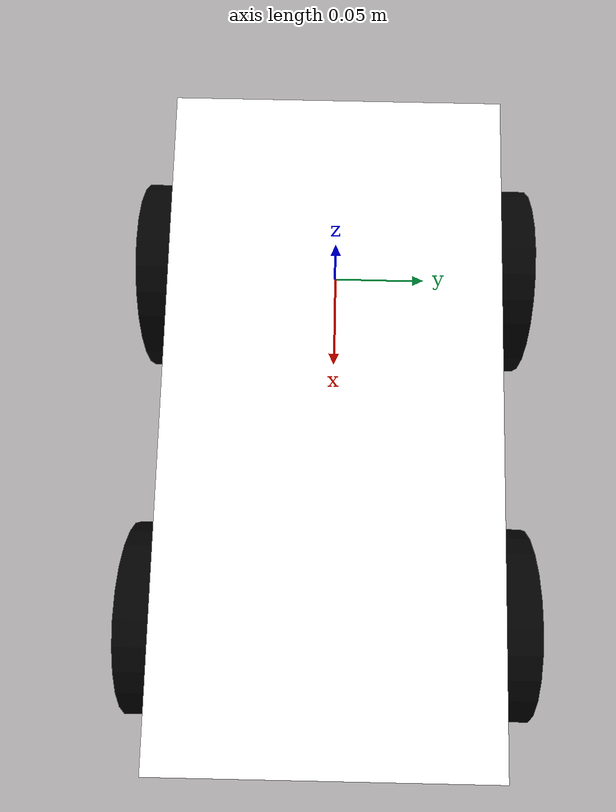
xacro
<?xml version="1.0"?>
<robot xmlns:xacro="http://www.ros.org/wiki/xacro">

    <xacro:include filename='inertial_macros.xacro'/>

    <material name="white">
        <color rgba="1 1 1 1"/>
    </material>

    <material name="orange">
        <color rgba="1 0.3 0.1 1"/>
    </material>

    <material name="blue">
        <color rgba="0.2 0.2 1 1"/>
    </material>

    <material name="black">
        <color rgba="0 0 0 1"/>
    </material>

    <!-- BASE LINK-->

    <link name="base_link">

    </link>

    <!-- CHASSIS LINK-->

    <joint name="chassis_joint" type="fixed">
        <parent link="base_link"/>
        <child link="chassis"/>
        <origin xyz="0.05 0 0"/>
    </joint>

    <link name="chassis">
        <visual>
            <origin xyz="0.05 0 0.05"></origin>
            <geometry>
                <box size="0.3 0.15 0.10" />
            </geometry>
            <material name="white"/>
        </visual>
        <collision>
            <origin xyz="0.05 0 0.05"></origin>
            <geometry>
                <box size="0.3 0.15 0.10" />
            </geometry>
        </collision>
        <xacro:inertial_box mass="0.85" x="0.3" y="0.15" z="0.10">
            <origin xyz="0.05 0 0.075"/>
        </xacro:inertial_box>
    </link>

    <!-- BACK LEFT WHEEL LINK-->

    <joint name="back_left_wheel_joint" type="continuous">
        <parent link="base_link"/>
        <child link="back_left_wheel"/>
        <origin xyz="0 0.0875 0" rpy="-${pi/2} 0 0"/>
        <axis xyz="0 0 1"/>
    </joint>

    <link name="back_left_wheel">
        <visual>
            <geometry>
                <cylinder radius="0.05" length="0.03"/>
            </geometry>
            <material name="black"/>
        </visual>
        <collision>
            <geometry>
                <cylinder radius="0.05" length="0.03"/>
            </geometry>
        </collision>
        <xacro:inertial_cylinder mass="0.03" length="0.03" radius="0.05">
            <origin xyz="0 0 0" rpy="0 0 0"/>
        </xacro:inertial_cylinder>
    </link>

    <!-- BACK RIGHT WHEEL LINK-->

    <joint name="back_right_wheel_joint" type="continuous">
        <parent link="base_link"/>
        <child link="back_right_wheel"/>
        <origin xyz="0 -0.0875 0" rpy="${pi/2} 0 0"/>
        <axis xyz="0 0 -1"/>
    </joint>

    <link name="back_right_wheel">
        <visual>
            <geometry>
                <cylinder radius="0.05" length="0.03"/>
            </geometry>
            <material name="black"/>
        </visual>
        <collision>
            <geometry>
                <cylinder radius="0.05" length="0.03"/>
            </geometry>
        </collision>
        <xacro:inertial_cylinder mass="0.03" length="0.03" radius="0.05">
            <origin xyz="0 0 0" rpy="0 0 0"/>
        </xacro:inertial_cylinder>
    </link>

    <!-- FRONT LEFT WHEEL LINK -->
    <joint name="front_left_wheel_joint" type="revolute">
        <parent link="chassis"/>
        <child link="front_left_wheel"/>
        <origin xyz="0.14 0.0875 0" rpy="-${pi/2} 0 0"/>
        <axis xyz="0 1 0"/>
        <limit effort="5" velocity="1" lower="-${pi/4}" upper="${pi/8}"/>
    </joint>

    <link name="front_left_wheel">
        <visual>
            <geometry>
                <cylinder radius="0.05" length="0.03"/>
            </geometry>
            <material name="black"/>
        </visual>
        <collision>
            <geometry>
                <cylinder radius="0.05" length="0.03"/>
            </geometry>
        </collision>
        <xacro:inertial_cylinder mass="0.03" length="0.03" radius="0.05">
            <origin xyz="0 0 0" rpy="0 0 0"/>
        </xacro:inertial_cylinder>
    </link>

    <!-- FRONT RIGHT WHEEL LINK -->
    <joint name="front_right_wheel_joint" type="revolute">
        <parent link="chassis"/>
        <child link="front_right_wheel"/>
        <origin xyz="0.14 -0.0875 0" rpy="${pi/2} 0 0"/>
        <axis xyz="0 -1 0"/>
        <limit effort="5" velocity="1" lower="-${pi/8}" upper="${pi/4}"/>
    </joint>

    <link name="front_right_wheel">
        <visual>
            <geometry>
                <cylinder radius="0.05" length="0.03"/>
            </geometry>
            <material name="black"/>
        </visual>
        <collision>
            <geometry>
                <cylinder radius="0.05" length="0.03"/>
            </geometry>
        </collision>
        <xacro:inertial_cylinder mass="0.03" length="0.03" radius="0.05">
            <origin xyz="0 0 0" rpy="0 0 0"/>
        </xacro:inertial_cylinder>
    </link>

</robot>

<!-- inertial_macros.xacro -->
<robot xmlns:xacro="http://www.ros.org/wiki/xacro" >

    <!-- Specify some standard inertial calculations https://en.wikipedia.org/wiki/List_of_moments_of_inertia -->
    <!-- These make use of xacro's mathematical functionality -->

    <xacro:macro name="inertial_box" params="mass x y z *origin">
        <inertial>
            <xacro:insert_block name="origin"/>
            <mass value="${mass}" />
            <inertia ixx="${(1/12) * mass * (y*y+z*z)}" ixy="0.0" ixz="0.0"
                    iyy="${(1/12) * mass * (x*x+z*z)}" iyz="0.0"
                    izz="${(1/12) * mass * (x*x+y*y)}" />
        </inertial>
    </xacro:macro>

    <xacro:macro name="inertial_cylinder" params="mass length radius *origin">
        <inertial>
            <xacro:insert_block name="origin"/>
            <mass value="${mass}" />
            <inertia ixx="${(1/12) * mass * (3*radius*radius + length*length)}" ixy="0.0" ixz="0.0"
                    iyy="${(1/12) * mass * (3*radius*radius + length*length)}" iyz="0.0"
                    izz="${(1/2) * mass * (radius*radius)}" />
        </inertial>
    </xacro:macro>

</robot>
